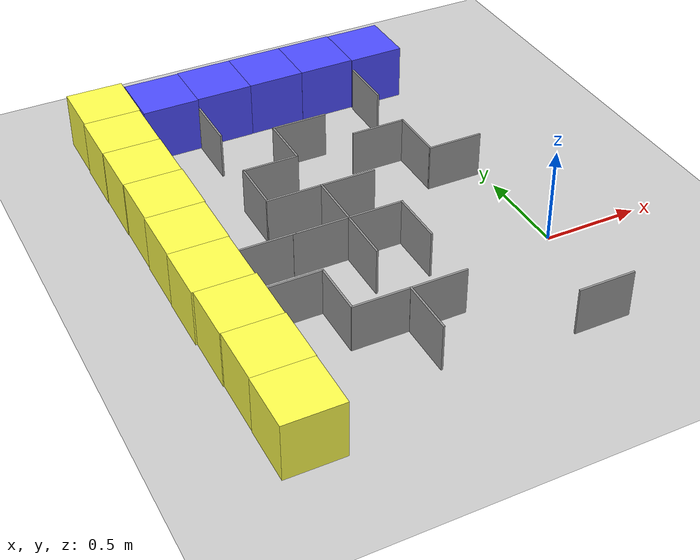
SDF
<sdf version="1.7">
 <world name="default">
  <model name="ground_plane">
   <static>1</static>
   <link name="link">
    <collision name="collision">
     <geometry><plane><normal>0 0 1</normal><size>100 100</size></plane></geometry>
     <surface><friction><ode><mu>100</mu><mu2>50</mu2></ode></friction></surface>
    </collision>
    <visual name="visual">
     <cast_shadows>0</cast_shadows>
     <geometry><plane><normal>0 0 1</normal><size>100 100</size></plane></geometry>
     <material>
      <script><uri>file://media/materials/scripts/gazebo.material</uri><name>Gazebo/Grey</name></script>
     </material>
    </visual>
   </link>
  </model>
  <model name="Box_Yellow_clone">
   <link name="link_0">
    <inertial>
     <mass>1</mass>
     <inertia>
      <ixx>0.166667</ixx>
      <ixy>0</ixy>
      <ixz>0</ixz>
      <iyy>0.166667</iyy>
      <iyz>0</iyz>
      <izz>0.166667</izz>
     </inertia>
    </inertial>
    <visual name="visual">
     <geometry><box><size>0.3 0.3 0.3</size></box></geometry>
     <material>
      <lighting>1</lighting>
      <script><uri>file://media/materials/scripts/gazebo.material</uri><name>Gazebo/Grey</name></script>
      <ambient>1 1 0.3 1</ambient>
      <diffuse>0.7 0.7 0.7 1</diffuse>
      <specular>0.01 0.01 0.01 1</specular>
      <emissive>0 0 0 1</emissive>
      <shader type="vertex"><normal_map>__default__</normal_map></shader>
     </material>
    </visual>
    <collision name="collision">
     <geometry><box><size>0.3 0.3 0.3</size></box></geometry>
     <surface>
      <friction>
       <ode><mu>1</mu><mu2>1</mu2><fdir1>0 0 0</fdir1><slip1>0</slip1><slip2>0</slip2></ode>
       <torsional>
        <coefficient>1</coefficient>
        <patch_radius>0</patch_radius>
        <surface_radius>0</surface_radius>
        <use_patch_radius>1</use_patch_radius>
        <ode><slip>0</slip></ode>
       </torsional>
      </friction>
      <bounce><restitution_coefficient>0</restitution_coefficient><threshold>1e+06</threshold></bounce>
      <contact>
       <collide_without_contact>0</collide_without_contact>
       <collide_without_contact_bitmask>1</collide_without_contact_bitmask>
       <collide_bitmask>1</collide_bitmask>
       <ode>
        <soft_cfm>0</soft_cfm>
        <soft_erp>0.2</soft_erp>
        <kp>1e+13</kp>
        <kd>1</kd>
        <max_vel>0.01</max_vel>
        <min_depth>0</min_depth>
       </ode>
       <bullet>
        <split_impulse>1</split_impulse>
        <split_impulse_penetration_threshold>-0.01</split_impulse_penetration_threshold>
        <soft_cfm>0</soft_cfm>
        <soft_erp>0.2</soft_erp>
        <kp>1e+13</kp>
        <kd>1</kd>
       </bullet>
      </contact>
     </surface>
    </collision>
   </link>
   <static>0</static>
   <pose>-1.66409 -0.700241 0.15 -0 -0 -0.003093</pose>
  </model>
  <model name="Box_Yellow_clone_0">
   <link name="link_0">
    <inertial>
     <mass>1</mass>
     <inertia>
      <ixx>0.166667</ixx>
      <ixy>0</ixy>
      <ixz>0</ixz>
      <iyy>0.166667</iyy>
      <iyz>0</iyz>
      <izz>0.166667</izz>
     </inertia>
    </inertial>
    <visual name="visual">
     <geometry><box><size>0.3 0.3 0.3</size></box></geometry>
     <material>
      <lighting>1</lighting>
      <script><uri>file://media/materials/scripts/gazebo.material</uri><name>Gazebo/Grey</name></script>
      <ambient>1 1 0.3 1</ambient>
      <diffuse>0.7 0.7 0.7 1</diffuse>
      <specular>0.01 0.01 0.01 1</specular>
      <emissive>0 0 0 1</emissive>
      <shader type="vertex"><normal_map>__default__</normal_map></shader>
     </material>
    </visual>
    <collision name="collision">
     <geometry><box><size>0.3 0.3 0.3</size></box></geometry>
     <surface>
      <friction>
       <ode><mu>1</mu><mu2>1</mu2><fdir1>0 0 0</fdir1><slip1>0</slip1><slip2>0</slip2></ode>
       <torsional>
        <coefficient>1</coefficient>
        <patch_radius>0</patch_radius>
        <surface_radius>0</surface_radius>
        <use_patch_radius>1</use_patch_radius>
        <ode><slip>0</slip></ode>
       </torsional>
      </friction>
      <bounce><restitution_coefficient>0</restitution_coefficient><threshold>1e+06</threshold></bounce>
      <contact>
       <collide_without_contact>0</collide_without_contact>
       <collide_without_contact_bitmask>1</collide_without_contact_bitmask>
       <collide_bitmask>1</collide_bitmask>
       <ode>
        <soft_cfm>0</soft_cfm>
        <soft_erp>0.2</soft_erp>
        <kp>1e+13</kp>
        <kd>1</kd>
        <max_vel>0.01</max_vel>
        <min_depth>0</min_depth>
       </ode>
       <bullet>
        <split_impulse>1</split_impulse>
        <split_impulse_penetration_threshold>-0.01</split_impulse_penetration_threshold>
        <soft_cfm>0</soft_cfm>
        <soft_erp>0.2</soft_erp>
        <kp>1e+13</kp>
        <kd>1</kd>
       </bullet>
      </contact>
     </surface>
    </collision>
   </link>
   <static>0</static>
   <pose>-1.66155 -0.400247 0.15 0 -0 -0.003093</pose>
  </model>
  <model name="Box_Yellow_clone_1">
   <link name="link_0">
    <inertial>
     <mass>1</mass>
     <inertia>
      <ixx>0.166667</ixx>
      <ixy>0</ixy>
      <ixz>0</ixz>
      <iyy>0.166667</iyy>
      <iyz>0</iyz>
      <izz>0.166667</izz>
     </inertia>
    </inertial>
    <visual name="visual">
     <geometry><box><size>0.3 0.3 0.3</size></box></geometry>
     <material>
      <lighting>1</lighting>
      <script><uri>file://media/materials/scripts/gazebo.material</uri><name>Gazebo/Grey</name></script>
      <ambient>1 1 0.3 1</ambient>
      <diffuse>0.7 0.7 0.7 1</diffuse>
      <specular>0.01 0.01 0.01 1</specular>
      <emissive>0 0 0 1</emissive>
      <shader type="vertex"><normal_map>__default__</normal_map></shader>
     </material>
    </visual>
    <collision name="collision">
     <geometry><box><size>0.3 0.3 0.3</size></box></geometry>
     <surface>
      <friction>
       <ode><mu>1</mu><mu2>1</mu2><fdir1>0 0 0</fdir1><slip1>0</slip1><slip2>0</slip2></ode>
       <torsional>
        <coefficient>1</coefficient>
        <patch_radius>0</patch_radius>
        <surface_radius>0</surface_radius>
        <use_patch_radius>1</use_patch_radius>
        <ode><slip>0</slip></ode>
       </torsional>
      </friction>
      <bounce><restitution_coefficient>0</restitution_coefficient><threshold>1e+06</threshold></bounce>
      <contact>
       <collide_without_contact>0</collide_without_contact>
       <collide_without_contact_bitmask>1</collide_without_contact_bitmask>
       <collide_bitmask>1</collide_bitmask>
       <ode>
        <soft_cfm>0</soft_cfm>
        <soft_erp>0.2</soft_erp>
        <kp>1e+13</kp>
        <kd>1</kd>
        <max_vel>0.01</max_vel>
        <min_depth>0</min_depth>
       </ode>
       <bullet>
        <split_impulse>1</split_impulse>
        <split_impulse_penetration_threshold>-0.01</split_impulse_penetration_threshold>
        <soft_cfm>0</soft_cfm>
        <soft_erp>0.2</soft_erp>
        <kp>1e+13</kp>
        <kd>1</kd>
       </bullet>
      </contact>
     </surface>
    </collision>
   </link>
   <static>0</static>
   <pose>-1.6649 -0.100231 0.15 -0 -0 -0.003101</pose>
  </model>
  <model name="Box_Yellow_clone_2">
   <link name="link_0">
    <inertial>
     <mass>1</mass>
     <inertia>
      <ixx>0.166667</ixx>
      <ixy>0</ixy>
      <ixz>0</ixz>
      <iyy>0.166667</iyy>
      <iyz>0</iyz>
      <izz>0.166667</izz>
     </inertia>
    </inertial>
    <visual name="visual">
     <geometry><box><size>0.3 0.3 0.3</size></box></geometry>
     <material>
      <lighting>1</lighting>
      <script><uri>file://media/materials/scripts/gazebo.material</uri><name>Gazebo/Grey</name></script>
      <ambient>1 1 0.3 1</ambient>
      <diffuse>0.7 0.7 0.7 1</diffuse>
      <specular>0.01 0.01 0.01 1</specular>
      <emissive>0 0 0 1</emissive>
      <shader type="vertex"><normal_map>__default__</normal_map></shader>
     </material>
    </visual>
    <collision name="collision">
     <geometry><box><size>0.3 0.3 0.3</size></box></geometry>
     <surface>
      <friction>
       <ode><mu>1</mu><mu2>1</mu2><fdir1>0 0 0</fdir1><slip1>0</slip1><slip2>0</slip2></ode>
       <torsional>
        <coefficient>1</coefficient>
        <patch_radius>0</patch_radius>
        <surface_radius>0</surface_radius>
        <use_patch_radius>1</use_patch_radius>
        <ode><slip>0</slip></ode>
       </torsional>
      </friction>
      <bounce><restitution_coefficient>0</restitution_coefficient><threshold>1e+06</threshold></bounce>
      <contact>
       <collide_without_contact>0</collide_without_contact>
       <collide_without_contact_bitmask>1</collide_without_contact_bitmask>
       <collide_bitmask>1</collide_bitmask>
       <ode>
        <soft_cfm>0</soft_cfm>
        <soft_erp>0.2</soft_erp>
        <kp>1e+13</kp>
        <kd>1</kd>
        <max_vel>0.01</max_vel>
        <min_depth>0</min_depth>
       </ode>
       <bullet>
        <split_impulse>1</split_impulse>
        <split_impulse_penetration_threshold>-0.01</split_impulse_penetration_threshold>
        <soft_cfm>0</soft_cfm>
        <soft_erp>0.2</soft_erp>
        <kp>1e+13</kp>
        <kd>1</kd>
       </bullet>
      </contact>
     </surface>
    </collision>
   </link>
   <static>0</static>
   <pose>-1.67216 0.199793 0.15 -0 -0 -0.003101</pose>
  </model>
  <model name="Box_Yellow_clone_3">
   <link name="link_0">
    <inertial>
     <mass>1</mass>
     <inertia>
      <ixx>0.166667</ixx>
      <ixy>0</ixy>
      <ixz>0</ixz>
      <iyy>0.166667</iyy>
      <iyz>0</iyz>
      <izz>0.166667</izz>
     </inertia>
    </inertial>
    <visual name="visual">
     <geometry><box><size>0.3 0.3 0.3</size></box></geometry>
     <material>
      <lighting>1</lighting>
      <script><uri>file://media/materials/scripts/gazebo.material</uri><name>Gazebo/Grey</name></script>
      <ambient>1 1 0.3 1</ambient>
      <diffuse>0.7 0.7 0.7 1</diffuse>
      <specular>0.01 0.01 0.01 1</specular>
      <emissive>0 0 0 1</emissive>
      <shader type="vertex"><normal_map>__default__</normal_map></shader>
     </material>
    </visual>
    <collision name="collision">
     <geometry><box><size>0.3 0.3 0.3</size></box></geometry>
     <surface>
      <friction>
       <ode><mu>1</mu><mu2>1</mu2><fdir1>0 0 0</fdir1><slip1>0</slip1><slip2>0</slip2></ode>
       <torsional>
        <coefficient>1</coefficient>
        <patch_radius>0</patch_radius>
        <surface_radius>0</surface_radius>
        <use_patch_radius>1</use_patch_radius>
        <ode><slip>0</slip></ode>
       </torsional>
      </friction>
      <bounce><restitution_coefficient>0</restitution_coefficient><threshold>1e+06</threshold></bounce>
      <contact>
       <collide_without_contact>0</collide_without_contact>
       <collide_without_contact_bitmask>1</collide_without_contact_bitmask>
       <collide_bitmask>1</collide_bitmask>
       <ode>
        <soft_cfm>0</soft_cfm>
        <soft_erp>0.2</soft_erp>
        <kp>1e+13</kp>
        <kd>1</kd>
        <max_vel>0.01</max_vel>
        <min_depth>0</min_depth>
       </ode>
       <bullet>
        <split_impulse>1</split_impulse>
        <split_impulse_penetration_threshold>-0.01</split_impulse_penetration_threshold>
        <soft_cfm>0</soft_cfm>
        <soft_erp>0.2</soft_erp>
        <kp>1e+13</kp>
        <kd>1</kd>
       </bullet>
      </contact>
     </surface>
    </collision>
   </link>
   <static>0</static>
   <pose>-1.66914 0.499818 0.15 0 -0 -0.003312</pose>
  </model>
  <model name="Box_Yellow_clone_4">
   <link name="link_0">
    <inertial>
     <mass>1</mass>
     <inertia>
      <ixx>0.166667</ixx>
      <ixy>0</ixy>
      <ixz>0</ixz>
      <iyy>0.166667</iyy>
      <iyz>0</iyz>
      <izz>0.166667</izz>
     </inertia>
    </inertial>
    <visual name="visual">
     <geometry><box><size>0.3 0.3 0.3</size></box></geometry>
     <material>
      <lighting>1</lighting>
      <script><uri>file://media/materials/scripts/gazebo.material</uri><name>Gazebo/Grey</name></script>
      <ambient>1 1 0.3 1</ambient>
      <diffuse>0.7 0.7 0.7 1</diffuse>
      <specular>0.01 0.01 0.01 1</specular>
      <emissive>0 0 0 1</emissive>
      <shader type="vertex"><normal_map>__default__</normal_map></shader>
     </material>
    </visual>
    <collision name="collision">
     <geometry><box><size>0.3 0.3 0.3</size></box></geometry>
     <surface>
      <friction>
       <ode><mu>1</mu><mu2>1</mu2><fdir1>0 0 0</fdir1><slip1>0</slip1><slip2>0</slip2></ode>
       <torsional>
        <coefficient>1</coefficient>
        <patch_radius>0</patch_radius>
        <surface_radius>0</surface_radius>
        <use_patch_radius>1</use_patch_radius>
        <ode><slip>0</slip></ode>
       </torsional>
      </friction>
      <bounce><restitution_coefficient>0</restitution_coefficient><threshold>1e+06</threshold></bounce>
      <contact>
       <collide_without_contact>0</collide_without_contact>
       <collide_without_contact_bitmask>1</collide_without_contact_bitmask>
       <collide_bitmask>1</collide_bitmask>
       <ode>
        <soft_cfm>0</soft_cfm>
        <soft_erp>0.2</soft_erp>
        <kp>1e+13</kp>
        <kd>1</kd>
        <max_vel>0.01</max_vel>
        <min_depth>0</min_depth>
       </ode>
       <bullet>
        <split_impulse>1</split_impulse>
        <split_impulse_penetration_threshold>-0.01</split_impulse_penetration_threshold>
        <soft_cfm>0</soft_cfm>
        <soft_erp>0.2</soft_erp>
        <kp>1e+13</kp>
        <kd>1</kd>
       </bullet>
      </contact>
     </surface>
    </collision>
   </link>
   <static>0</static>
   <pose>-1.66503 0.799831 0.149998 -5e-06 -7e-06 -0.003447</pose>
  </model>
  <model name="Box_Yellow_clone_5">
   <link name="link_0">
    <inertial>
     <mass>1</mass>
     <inertia>
      <ixx>0.166667</ixx>
      <ixy>0</ixy>
      <ixz>0</ixz>
      <iyy>0.166667</iyy>
      <iyz>0</iyz>
      <izz>0.166667</izz>
     </inertia>
    </inertial>
    <visual name="visual">
     <geometry><box><size>0.3 0.3 0.3</size></box></geometry>
     <material>
      <lighting>1</lighting>
      <script><uri>file://media/materials/scripts/gazebo.material</uri><name>Gazebo/Grey</name></script>
      <ambient>1 1 0.3 1</ambient>
      <diffuse>0.7 0.7 0.7 1</diffuse>
      <specular>0.01 0.01 0.01 1</specular>
      <emissive>0 0 0 1</emissive>
      <shader type="vertex"><normal_map>__default__</normal_map></shader>
     </material>
    </visual>
    <collision name="collision">
     <geometry><box><size>0.3 0.3 0.3</size></box></geometry>
     <surface>
      <friction>
       <ode><mu>1</mu><mu2>1</mu2><fdir1>0 0 0</fdir1><slip1>0</slip1><slip2>0</slip2></ode>
       <torsional>
        <coefficient>1</coefficient>
        <patch_radius>0</patch_radius>
        <surface_radius>0</surface_radius>
        <use_patch_radius>1</use_patch_radius>
        <ode><slip>0</slip></ode>
       </torsional>
      </friction>
      <bounce><restitution_coefficient>0</restitution_coefficient><threshold>1e+06</threshold></bounce>
      <contact>
       <collide_without_contact>0</collide_without_contact>
       <collide_without_contact_bitmask>1</collide_without_contact_bitmask>
       <collide_bitmask>1</collide_bitmask>
       <ode>
        <soft_cfm>0</soft_cfm>
        <soft_erp>0.2</soft_erp>
        <kp>1e+13</kp>
        <kd>1</kd>
        <max_vel>0.01</max_vel>
        <min_depth>0</min_depth>
       </ode>
       <bullet>
        <split_impulse>1</split_impulse>
        <split_impulse_penetration_threshold>-0.01</split_impulse_penetration_threshold>
        <soft_cfm>0</soft_cfm>
        <soft_erp>0.2</soft_erp>
        <kp>1e+13</kp>
        <kd>1</kd>
       </bullet>
      </contact>
     </surface>
    </collision>
   </link>
   <static>0</static>
   <pose>-1.6671 1.09986 0.15 0 -0 -0.003564</pose>
  </model>
  <model name="Box_Yellow_clone_6">
   <link name="link_0">
    <inertial>
     <mass>1</mass>
     <inertia>
      <ixx>0.166667</ixx>
      <ixy>0</ixy>
      <ixz>0</ixz>
      <iyy>0.166667</iyy>
      <iyz>0</iyz>
      <izz>0.166667</izz>
     </inertia>
    </inertial>
    <visual name="visual">
     <geometry><box><size>0.3 0.3 0.3</size></box></geometry>
     <material>
      <lighting>1</lighting>
      <script><uri>file://media/materials/scripts/gazebo.material</uri><name>Gazebo/Grey</name></script>
      <ambient>1 1 0.3 1</ambient>
      <diffuse>0.7 0.7 0.7 1</diffuse>
      <specular>0.01 0.01 0.01 1</specular>
      <emissive>0 0 0 1</emissive>
      <shader type="vertex"><normal_map>__default__</normal_map></shader>
     </material>
    </visual>
    <collision name="collision">
     <geometry><box><size>0.3 0.3 0.3</size></box></geometry>
     <surface>
      <friction>
       <ode><mu>1</mu><mu2>1</mu2><fdir1>0 0 0</fdir1><slip1>0</slip1><slip2>0</slip2></ode>
       <torsional>
        <coefficient>1</coefficient>
        <patch_radius>0</patch_radius>
        <surface_radius>0</surface_radius>
        <use_patch_radius>1</use_patch_radius>
        <ode><slip>0</slip></ode>
       </torsional>
      </friction>
      <bounce><restitution_coefficient>0</restitution_coefficient><threshold>1e+06</threshold></bounce>
      <contact>
       <collide_without_contact>0</collide_without_contact>
       <collide_without_contact_bitmask>1</collide_without_contact_bitmask>
       <collide_bitmask>1</collide_bitmask>
       <ode>
        <soft_cfm>0</soft_cfm>
        <soft_erp>0.2</soft_erp>
        <kp>1e+13</kp>
        <kd>1</kd>
        <max_vel>0.01</max_vel>
        <min_depth>0</min_depth>
       </ode>
       <bullet>
        <split_impulse>1</split_impulse>
        <split_impulse_penetration_threshold>-0.01</split_impulse_penetration_threshold>
        <soft_cfm>0</soft_cfm>
        <soft_erp>0.2</soft_erp>
        <kp>1e+13</kp>
        <kd>1</kd>
       </bullet>
      </contact>
     </surface>
    </collision>
   </link>
   <static>0</static>
   <pose>-1.66797 1.39989 0.15 -0 -0 -0.003556</pose>
  </model>
  <model name="Box_Yellow_clone_7">
   <link name="link_0">
    <inertial>
     <mass>1</mass>
     <inertia>
      <ixx>0.166667</ixx>
      <ixy>0</ixy>
      <ixz>0</ixz>
      <iyy>0.166667</iyy>
      <iyz>0</iyz>
      <izz>0.166667</izz>
     </inertia>
    </inertial>
    <visual name="visual">
     <geometry><box><size>0.3 0.3 0.3</size></box></geometry>
     <material>
      <lighting>1</lighting>
      <script><uri>file://media/materials/scripts/gazebo.material</uri><name>Gazebo/Grey</name></script>
      <ambient>1 1 0.3 1</ambient>
      <diffuse>0.7 0.7 0.7 1</diffuse>
      <specular>0.01 0.01 0.01 1</specular>
      <emissive>0 0 0 1</emissive>
      <shader type="vertex"><normal_map>__default__</normal_map></shader>
     </material>
    </visual>
    <collision name="collision">
     <geometry><box><size>0.3 0.3 0.3</size></box></geometry>
     <surface>
      <friction>
       <ode><mu>1</mu><mu2>1</mu2><fdir1>0 0 0</fdir1><slip1>0</slip1><slip2>0</slip2></ode>
       <torsional>
        <coefficient>1</coefficient>
        <patch_radius>0</patch_radius>
        <surface_radius>0</surface_radius>
        <use_patch_radius>1</use_patch_radius>
        <ode><slip>0</slip></ode>
       </torsional>
      </friction>
      <bounce><restitution_coefficient>0</restitution_coefficient><threshold>1e+06</threshold></bounce>
      <contact>
       <collide_without_contact>0</collide_without_contact>
       <collide_without_contact_bitmask>1</collide_without_contact_bitmask>
       <collide_bitmask>1</collide_bitmask>
       <ode>
        <soft_cfm>0</soft_cfm>
        <soft_erp>0.2</soft_erp>
        <kp>1e+13</kp>
        <kd>1</kd>
        <max_vel>0.01</max_vel>
        <min_depth>0</min_depth>
       </ode>
       <bullet>
        <split_impulse>1</split_impulse>
        <split_impulse_penetration_threshold>-0.01</split_impulse_penetration_threshold>
        <soft_cfm>0</soft_cfm>
        <soft_erp>0.2</soft_erp>
        <kp>1e+13</kp>
        <kd>1</kd>
       </bullet>
      </contact>
     </surface>
    </collision>
   </link>
   <static>0</static>
   <pose>-1.66352 1.6999 0.15 0 0 -0.003578</pose>
  </model>
  <model name="Box_Blue_clone_3">
   <link name="link_0">
    <inertial>
     <mass>1</mass>
     <inertia>
      <ixx>0.166667</ixx>
      <ixy>0</ixy>
      <ixz>0</ixz>
      <iyy>0.166667</iyy>
      <iyz>0</iyz>
      <izz>0.166667</izz>
     </inertia>
    </inertial>
    <visual name="visual">
     <geometry><box><size>0.3 0.3 0.3</size></box></geometry>
     <material>
      <lighting>1</lighting>
      <script><uri>file://media/materials/scripts/gazebo.material</uri><name>Gazebo/Grey</name></script>
      <ambient>0.3 0.3 1 1</ambient>
      <diffuse>0.7 0.7 0.7 1</diffuse>
      <specular>0.01 0.01 0.01 1</specular>
      <emissive>0 0 0 1</emissive>
      <shader type="vertex"><normal_map>__default__</normal_map></shader>
     </material>
    </visual>
    <collision name="collision">
     <geometry><box><size>0.3 0.3 0.3</size></box></geometry>
     <surface>
      <friction>
       <ode><mu>1</mu><mu2>1</mu2><fdir1>0 0 0</fdir1><slip1>0</slip1><slip2>0</slip2></ode>
       <torsional>
        <coefficient>1</coefficient>
        <patch_radius>0</patch_radius>
        <surface_radius>0</surface_radius>
        <use_patch_radius>1</use_patch_radius>
        <ode><slip>0</slip></ode>
       </torsional>
      </friction>
      <bounce><restitution_coefficient>0</restitution_coefficient><threshold>1e+06</threshold></bounce>
      <contact>
       <collide_without_contact>0</collide_without_contact>
       <collide_without_contact_bitmask>1</collide_without_contact_bitmask>
       <collide_bitmask>1</collide_bitmask>
       <ode>
        <soft_cfm>0</soft_cfm>
        <soft_erp>0.2</soft_erp>
        <kp>1e+13</kp>
        <kd>1</kd>
        <max_vel>0.01</max_vel>
        <min_depth>0</min_depth>
       </ode>
       <bullet>
        <split_impulse>1</split_impulse>
        <split_impulse_penetration_threshold>-0.01</split_impulse_penetration_threshold>
        <soft_cfm>0</soft_cfm>
        <soft_erp>0.2</soft_erp>
        <kp>1e+13</kp>
        <kd>1</kd>
       </bullet>
      </contact>
     </surface>
    </collision>
   </link>
   <static>0</static>
   <pose>-0.159685 1.65795 0.15 0 -0 0.001821</pose>
  </model>
  <model name="Box_Blue_clone_4">
   <link name="link_0">
    <inertial>
     <mass>1</mass>
     <inertia>
      <ixx>0.166667</ixx>
      <ixy>0</ixy>
      <ixz>0</ixz>
      <iyy>0.166667</iyy>
      <iyz>0</iyz>
      <izz>0.166667</izz>
     </inertia>
    </inertial>
    <visual name="visual">
     <geometry><box><size>0.3 0.3 0.3</size></box></geometry>
     <material>
      <lighting>1</lighting>
      <script><uri>file://media/materials/scripts/gazebo.material</uri><name>Gazebo/Grey</name></script>
      <ambient>0.3 0.3 1 1</ambient>
      <diffuse>0.7 0.7 0.7 1</diffuse>
      <specular>0.01 0.01 0.01 1</specular>
      <emissive>0 0 0 1</emissive>
      <shader type="vertex"><normal_map>__default__</normal_map></shader>
     </material>
    </visual>
    <collision name="collision">
     <geometry><box><size>0.3 0.3 0.3</size></box></geometry>
     <surface>
      <friction>
       <ode><mu>1</mu><mu2>1</mu2><fdir1>0 0 0</fdir1><slip1>0</slip1><slip2>0</slip2></ode>
       <torsional>
        <coefficient>1</coefficient>
        <patch_radius>0</patch_radius>
        <surface_radius>0</surface_radius>
        <use_patch_radius>1</use_patch_radius>
        <ode><slip>0</slip></ode>
       </torsional>
      </friction>
      <bounce><restitution_coefficient>0</restitution_coefficient><threshold>1e+06</threshold></bounce>
      <contact>
       <collide_without_contact>0</collide_without_contact>
       <collide_without_contact_bitmask>1</collide_without_contact_bitmask>
       <collide_bitmask>1</collide_bitmask>
       <ode>
        <soft_cfm>0</soft_cfm>
        <soft_erp>0.2</soft_erp>
        <kp>1e+13</kp>
        <kd>1</kd>
        <max_vel>0.01</max_vel>
        <min_depth>0</min_depth>
       </ode>
       <bullet>
        <split_impulse>1</split_impulse>
        <split_impulse_penetration_threshold>-0.01</split_impulse_penetration_threshold>
        <soft_cfm>0</soft_cfm>
        <soft_erp>0.2</soft_erp>
        <kp>1e+13</kp>
        <kd>1</kd>
       </bullet>
      </contact>
     </surface>
    </collision>
   </link>
   <static>0</static>
   <pose>-0.459734 1.6624 0.15 0 -0 0.001553</pose>
  </model>
  <model name="Box_Blue_clone_5">
   <link name="link_0">
    <inertial>
     <mass>1</mass>
     <inertia>
      <ixx>0.166667</ixx>
      <ixy>0</ixy>
      <ixz>0</ixz>
      <iyy>0.166667</iyy>
      <iyz>0</iyz>
      <izz>0.166667</izz>
     </inertia>
    </inertial>
    <visual name="visual">
     <geometry><box><size>0.3 0.3 0.3</size></box></geometry>
     <material>
      <lighting>1</lighting>
      <script><uri>file://media/materials/scripts/gazebo.material</uri><name>Gazebo/Grey</name></script>
      <ambient>0.3 0.3 1 1</ambient>
      <diffuse>0.7 0.7 0.7 1</diffuse>
      <specular>0.01 0.01 0.01 1</specular>
      <emissive>0 0 0 1</emissive>
      <shader type="vertex"><normal_map>__default__</normal_map></shader>
     </material>
    </visual>
    <collision name="collision">
     <geometry><box><size>0.3 0.3 0.3</size></box></geometry>
     <surface>
      <friction>
       <ode><mu>1</mu><mu2>1</mu2><fdir1>0 0 0</fdir1><slip1>0</slip1><slip2>0</slip2></ode>
       <torsional>
        <coefficient>1</coefficient>
        <patch_radius>0</patch_radius>
        <surface_radius>0</surface_radius>
        <use_patch_radius>1</use_patch_radius>
        <ode><slip>0</slip></ode>
       </torsional>
      </friction>
      <bounce><restitution_coefficient>0</restitution_coefficient><threshold>1e+06</threshold></bounce>
      <contact>
       <collide_without_contact>0</collide_without_contact>
       <collide_without_contact_bitmask>1</collide_without_contact_bitmask>
       <collide_bitmask>1</collide_bitmask>
       <ode>
        <soft_cfm>0</soft_cfm>
        <soft_erp>0.2</soft_erp>
        <kp>1e+13</kp>
        <kd>1</kd>
        <max_vel>0.01</max_vel>
        <min_depth>0</min_depth>
       </ode>
       <bullet>
        <split_impulse>1</split_impulse>
        <split_impulse_penetration_threshold>-0.01</split_impulse_penetration_threshold>
        <soft_cfm>0</soft_cfm>
        <soft_erp>0.2</soft_erp>
        <kp>1e+13</kp>
        <kd>1</kd>
       </bullet>
      </contact>
     </surface>
    </collision>
   </link>
   <static>0</static>
   <pose>-0.759764 1.66238 0.15 0 -0 0.001446</pose>
  </model>
  <model name="Box_Blue_clone_6">
   <link name="link_0">
    <inertial>
     <mass>1</mass>
     <inertia>
      <ixx>0.166667</ixx>
      <ixy>0</ixy>
      <ixz>0</ixz>
      <iyy>0.166667</iyy>
      <iyz>0</iyz>
      <izz>0.166667</izz>
     </inertia>
    </inertial>
    <visual name="visual">
     <geometry><box><size>0.3 0.3 0.3</size></box></geometry>
     <material>
      <lighting>1</lighting>
      <script><uri>file://media/materials/scripts/gazebo.material</uri><name>Gazebo/Grey</name></script>
      <ambient>0.3 0.3 1 1</ambient>
      <diffuse>0.7 0.7 0.7 1</diffuse>
      <specular>0.01 0.01 0.01 1</specular>
      <emissive>0 0 0 1</emissive>
      <shader type="vertex"><normal_map>__default__</normal_map></shader>
     </material>
    </visual>
    <collision name="collision">
     <geometry><box><size>0.3 0.3 0.3</size></box></geometry>
     <surface>
      <friction>
       <ode><mu>1</mu><mu2>1</mu2><fdir1>0 0 0</fdir1><slip1>0</slip1><slip2>0</slip2></ode>
       <torsional>
        <coefficient>1</coefficient>
        <patch_radius>0</patch_radius>
        <surface_radius>0</surface_radius>
        <use_patch_radius>1</use_patch_radius>
        <ode><slip>0</slip></ode>
       </torsional>
      </friction>
      <bounce><restitution_coefficient>0</restitution_coefficient><threshold>1e+06</threshold></bounce>
      <contact>
       <collide_without_contact>0</collide_without_contact>
       <collide_without_contact_bitmask>1</collide_without_contact_bitmask>
       <collide_bitmask>1</collide_bitmask>
       <ode>
        <soft_cfm>0</soft_cfm>
        <soft_erp>0.2</soft_erp>
        <kp>1e+13</kp>
        <kd>1</kd>
        <max_vel>0.01</max_vel>
        <min_depth>0</min_depth>
       </ode>
       <bullet>
        <split_impulse>1</split_impulse>
        <split_impulse_penetration_threshold>-0.01</split_impulse_penetration_threshold>
        <soft_cfm>0</soft_cfm>
        <soft_erp>0.2</soft_erp>
        <kp>1e+13</kp>
        <kd>1</kd>
       </bullet>
      </contact>
     </surface>
    </collision>
   </link>
   <static>0</static>
   <pose>-1.05978 1.66049 0.15 0 -0 0.001403</pose>
  </model>
  <model name="Box_Blue_clone_7">
   <link name="link_0">
    <inertial>
     <mass>1</mass>
     <inertia>
      <ixx>0.166667</ixx>
      <ixy>0</ixy>
      <ixz>0</ixz>
      <iyy>0.166667</iyy>
      <iyz>0</iyz>
      <izz>0.166667</izz>
     </inertia>
    </inertial>
    <visual name="visual">
     <geometry><box><size>0.3 0.3 0.3</size></box></geometry>
     <material>
      <lighting>1</lighting>
      <script><uri>file://media/materials/scripts/gazebo.material</uri><name>Gazebo/Grey</name></script>
      <ambient>0.3 0.3 1 1</ambient>
      <diffuse>0.7 0.7 0.7 1</diffuse>
      <specular>0.01 0.01 0.01 1</specular>
      <emissive>0 0 0 1</emissive>
      <shader type="vertex"><normal_map>__default__</normal_map></shader>
     </material>
    </visual>
    <collision name="collision">
     <geometry><box><size>0.3 0.3 0.3</size></box></geometry>
     <surface>
      <friction>
       <ode><mu>1</mu><mu2>1</mu2><fdir1>0 0 0</fdir1><slip1>0</slip1><slip2>0</slip2></ode>
       <torsional>
        <coefficient>1</coefficient>
        <patch_radius>0</patch_radius>
        <surface_radius>0</surface_radius>
        <use_patch_radius>1</use_patch_radius>
        <ode><slip>0</slip></ode>
       </torsional>
      </friction>
      <bounce><restitution_coefficient>0</restitution_coefficient><threshold>1e+06</threshold></bounce>
      <contact>
       <collide_without_contact>0</collide_without_contact>
       <collide_without_contact_bitmask>1</collide_without_contact_bitmask>
       <collide_bitmask>1</collide_bitmask>
       <ode>
        <soft_cfm>0</soft_cfm>
        <soft_erp>0.2</soft_erp>
        <kp>1e+13</kp>
        <kd>1</kd>
        <max_vel>0.01</max_vel>
        <min_depth>0</min_depth>
       </ode>
       <bullet>
        <split_impulse>1</split_impulse>
        <split_impulse_penetration_threshold>-0.01</split_impulse_penetration_threshold>
        <soft_cfm>0</soft_cfm>
        <soft_erp>0.2</soft_erp>
        <kp>1e+13</kp>
        <kd>1</kd>
       </bullet>
      </contact>
     </surface>
    </collision>
   </link>
   <static>0</static>
   <pose>-1.3598 1.65522 0.15 0 -0 0.001322</pose>
  </model>
  <model name="Maze_I_V">
   <pose>-1.35964 0.293545 0 0 -0 0</pose>
   <link name="Wall_0">
    <collision name="Wall_0_Collision">
     <geometry><box><size>0.294 0.01 0.25</size></box></geometry>
     <pose>0 0 0.125 0 -0 0</pose>
    </collision>
    <visual name="Wall_0_Visual">
     <pose>0 0 0.125 0 -0 0</pose>
     <geometry><box><size>0.294 0.01 0.25</size></box></geometry>
     <material>
      <script><uri>file://media/materials/scripts/gazebo.material</uri><name>Gazebo/Grey</name></script>
      <ambient>1 1 1 1</ambient>
     </material>
     <meta><layer>0</layer></meta>
    </visual>
   </link>
   <static>1</static>
  </model>
  <model name="Maze_L_LB">
   <pose>-0.798102 0.44384 0 0 -0 0</pose>
   <link name="Wall_0">
    <collision name="Wall_0_Collision">
     <geometry><box><size>0.294 0.01 0.25</size></box></geometry>
     <pose>0 0 0.125 0 -0 0</pose>
    </collision>
    <visual name="Wall_0_Visual">
     <pose>0 0 0.125 0 -0 0</pose>
     <geometry><box><size>0.294 0.01 0.25</size></box></geometry>
     <material>
      <script><uri>file://media/materials/scripts/gazebo.material</uri><name>Gazebo/Grey</name></script>
      <ambient>1 1 1 1</ambient>
     </material>
     <meta><layer>0</layer></meta>
    </visual>
    <pose>0 0.142 0 0 -0 0</pose>
   </link>
   <link name="Wall_2">
    <collision name="Wall_2_Collision">
     <geometry><box><size>0.294 0.01 0.25</size></box></geometry>
     <pose>0 0 0.125 0 -0 0</pose>
    </collision>
    <visual name="Wall_2_Visual">
     <pose>0 0 0.125 0 -0 0</pose>
     <geometry><box><size>0.294 0.01 0.25</size></box></geometry>
     <material>
      <script><uri>file://media/materials/scripts/gazebo.material</uri><name>Gazebo/Grey</name></script>
      <ambient>1 1 1 1</ambient>
     </material>
     <meta><layer>0</layer></meta>
    </visual>
    <pose>-0.142 0 0 0 0 -1.5708</pose>
   </link>
   <static>1</static>
  </model>
  <model name="Maze_L_LU">
   <pose>-1.36321 -0.14843 0 0 -0 0</pose>
   <link name="Wall_0">
    <collision name="Wall_0_Collision">
     <geometry><box><size>0.294 0.01 0.25</size></box></geometry>
     <pose>0 0 0.125 0 -0 0</pose>
    </collision>
    <visual name="Wall_0_Visual">
     <pose>0 0 0.125 0 -0 0</pose>
     <geometry><box><size>0.294 0.01 0.25</size></box></geometry>
     <material>
      <script><uri>file://media/materials/scripts/gazebo.material</uri><name>Gazebo/Grey</name></script>
      <ambient>1 1 1 1</ambient>
     </material>
     <meta><layer>0</layer></meta>
    </visual>
    <pose>0 0.142 0 0 -0 3.14159</pose>
   </link>
   <link name="Wall_2">
    <collision name="Wall_2_Collision">
     <geometry><box><size>0.294 0.01 0.25</size></box></geometry>
     <pose>0 0 0.125 0 -0 0</pose>
    </collision>
    <visual name="Wall_2_Visual">
     <pose>0 0 0.125 0 -0 0</pose>
     <geometry><box><size>0.294 0.01 0.25</size></box></geometry>
     <material>
      <script><uri>file://media/materials/scripts/gazebo.material</uri><name>Gazebo/Grey</name></script>
      <ambient>1 1 1 1</ambient>
     </material>
     <meta><layer>0</layer></meta>
    </visual>
    <pose>0.142 0 0 0 0 -1.5708</pose>
   </link>
   <static>1</static>
  </model>
  <model name="Maze_L_RB">
   <pose>-1.08633 0.727561 0 0 -0 0</pose>
   <link name="Wall_0">
    <collision name="Wall_0_Collision">
     <geometry><box><size>0.294 0.01 0.25</size></box></geometry>
     <pose>0 0 0.125 0 -0 0</pose>
    </collision>
    <visual name="Wall_0_Visual">
     <pose>0 0 0.125 0 -0 0</pose>
     <geometry><box><size>0.294 0.01 0.25</size></box></geometry>
     <material>
      <script><uri>file://media/materials/scripts/gazebo.material</uri><name>Gazebo/Grey</name></script>
      <ambient>1 1 1 1</ambient>
     </material>
     <meta><layer>0</layer></meta>
    </visual>
    <pose>0 -0.142 0 0 -0 0</pose>
   </link>
   <link name="Wall_2">
    <collision name="Wall_2_Collision">
     <geometry><box><size>0.294 0.01 0.25</size></box></geometry>
     <pose>0 0 0.125 0 -0 0</pose>
    </collision>
    <visual name="Wall_2_Visual">
     <pose>0 0 0.125 0 -0 0</pose>
     <geometry><box><size>0.294 0.01 0.25</size></box></geometry>
     <material>
      <script><uri>file://media/materials/scripts/gazebo.material</uri><name>Gazebo/Grey</name></script>
      <ambient>1 1 1 1</ambient>
     </material>
     <meta><layer>0</layer></meta>
    </visual>
    <pose>-0.142 0 0 0 -0 1.5708</pose>
   </link>
   <static>1</static>
  </model>
  <model name="Maze_I_H_clone_5">
   <pose>-0.308653 1.3447 0 0 -0 0</pose>
   <link name="Wall_0">
    <collision name="Wall_0_Collision">
     <geometry><box><size>0.294 0.01 0.25</size></box></geometry>
     <pose>0 0 0.125 0 -0 0</pose>
    </collision>
    <visual name="Wall_0_Visual">
     <pose>0 0 0.125 0 -0 0</pose>
     <geometry><box><size>0.294 0.01 0.25</size></box></geometry>
     <material>
      <script><uri>file://media/materials/scripts/gazebo.material</uri><name>Gazebo/Grey</name></script>
      <ambient>1 1 1 1</ambient>
     </material>
     <meta><layer>0</layer></meta>
    </visual>
    <pose>0 0 0 0 -0 1.5708</pose>
   </link>
   <static>1</static>
  </model>
  <model name="Maze_I_H_clone_6">
   <pose>-1.20777 1.35352 0 0 -0 0</pose>
   <link name="Wall_0">
    <collision name="Wall_0_Collision">
     <geometry><box><size>0.294 0.01 0.25</size></box></geometry>
     <pose>0 0 0.125 0 -0 0</pose>
    </collision>
    <visual name="Wall_0_Visual">
     <pose>0 0 0.125 0 -0 0</pose>
     <geometry><box><size>0.294 0.01 0.25</size></box></geometry>
     <material>
      <script><uri>file://media/materials/scripts/gazebo.material</uri><name>Gazebo/Grey</name></script>
      <ambient>1 1 1 1</ambient>
     </material>
     <meta><layer>0</layer></meta>
    </visual>
    <pose>0 0 0 0 -0 1.5708</pose>
   </link>
   <static>1</static>
  </model>
  <model name="Maze_I_V_clone_1">
   <pose>-0.135618 -0.641445 0 0 -0 0</pose>
   <link name="Wall_0">
    <collision name="Wall_0_Collision">
     <geometry><box><size>0.294 0.01 0.25</size></box></geometry>
     <pose>0 0 0.125 0 -0 0</pose>
    </collision>
    <visual name="Wall_0_Visual">
     <pose>0 0 0.125 0 -0 0</pose>
     <geometry><box><size>0.294 0.01 0.25</size></box></geometry>
     <material>
      <script><uri>file://media/materials/scripts/gazebo.material</uri><name>Gazebo/Grey</name></script>
      <ambient>1 1 1 1</ambient>
     </material>
     <meta><layer>0</layer></meta>
    </visual>
   </link>
   <static>1</static>
  </model>
  <model name="Maze_L_LU_clone_1">
   <pose>-0.452385 0.781514 0 0 -0 0</pose>
   <link name="Wall_0">
    <collision name="Wall_0_Collision">
     <geometry><box><size>0.294 0.01 0.25</size></box></geometry>
     <pose>0 0 0.125 0 -0 0</pose>
    </collision>
    <visual name="Wall_0_Visual">
     <pose>0 0 0.125 0 -0 0</pose>
     <geometry><box><size>0.294 0.01 0.25</size></box></geometry>
     <material>
      <script><uri>file://media/materials/scripts/gazebo.material</uri><name>Gazebo/Grey</name></script>
      <ambient>1 1 1 1</ambient>
     </material>
     <meta><layer>0</layer></meta>
    </visual>
    <pose>0 0.142 0 0 -0 3.14159</pose>
   </link>
   <link name="Wall_2">
    <collision name="Wall_2_Collision">
     <geometry><box><size>0.294 0.01 0.25</size></box></geometry>
     <pose>0 0 0.125 0 -0 0</pose>
    </collision>
    <visual name="Wall_2_Visual">
     <pose>0 0 0.125 0 -0 0</pose>
     <geometry><box><size>0.294 0.01 0.25</size></box></geometry>
     <material>
      <script><uri>file://media/materials/scripts/gazebo.material</uri><name>Gazebo/Grey</name></script>
      <ambient>1 1 1 1</ambient>
     </material>
     <meta><layer>0</layer></meta>
    </visual>
    <pose>0.142 0 0 0 0 -1.5708</pose>
   </link>
   <static>1</static>
  </model>
  <model name="Maze_I_V_clone_2">
   <pose>-0.16756 0.630564 0 0 -0 0</pose>
   <link name="Wall_0">
    <collision name="Wall_0_Collision">
     <geometry><box><size>0.294 0.01 0.25</size></box></geometry>
     <pose>0 0 0.125 0 -0 0</pose>
    </collision>
    <visual name="Wall_0_Visual">
     <pose>0 0 0.125 0 -0 0</pose>
     <geometry><box><size>0.294 0.01 0.25</size></box></geometry>
     <material>
      <script><uri>file://media/materials/scripts/gazebo.material</uri><name>Gazebo/Grey</name></script>
      <ambient>1 1 1 1</ambient>
     </material>
     <meta><layer>0</layer></meta>
    </visual>
   </link>
   <static>1</static>
  </model>
  <model name="Maze_L_LB_clone_5_clone">
   <pose>-0.788521 -0.434448 0 0 -0 0</pose>
   <link name="Wall_0">
    <collision name="Wall_0_Collision">
     <geometry><box><size>0.294 0.01 0.25</size></box></geometry>
     <pose>0 0 0.125 0 -0 0</pose>
    </collision>
    <visual name="Wall_0_Visual">
     <pose>0 0 0.125 0 -0 0</pose>
     <geometry><box><size>0.294 0.01 0.25</size></box></geometry>
     <material>
      <script><uri>file://media/materials/scripts/gazebo.material</uri><name>Gazebo/Grey</name></script>
      <ambient>1 1 1 1</ambient>
     </material>
     <meta><layer>0</layer></meta>
    </visual>
    <pose>0 0.142 0 0 -0 0</pose>
   </link>
   <link name="Wall_2">
    <collision name="Wall_2_Collision">
     <geometry><box><size>0.294 0.01 0.25</size></box></geometry>
     <pose>0 0 0.125 0 -0 0</pose>
    </collision>
    <visual name="Wall_2_Visual">
     <pose>0 0 0.125 0 -0 0</pose>
     <geometry><box><size>0.294 0.01 0.25</size></box></geometry>
     <material>
      <script><uri>file://media/materials/scripts/gazebo.material</uri><name>Gazebo/Grey</name></script>
      <ambient>1 1 1 1</ambient>
     </material>
     <meta><layer>0</layer></meta>
    </visual>
    <pose>-0.142 0 0 0 0 -1.5708</pose>
   </link>
   <static>1</static>
  </model>
  <model name="Maze_I_V_clone_4">
   <pose>-1.07712 -0.291215 0 0 -0 0</pose>
   <link name="Wall_0">
    <collision name="Wall_0_Collision">
     <geometry><box><size>0.294 0.01 0.25</size></box></geometry>
     <pose>0 0 0.125 0 -0 0</pose>
    </collision>
    <visual name="Wall_0_Visual">
     <pose>0 0 0.125 0 -0 0</pose>
     <geometry><box><size>0.294 0.01 0.25</size></box></geometry>
     <material>
      <script><uri>file://media/materials/scripts/gazebo.material</uri><name>Gazebo/Grey</name></script>
      <ambient>1 1 1 1</ambient>
     </material>
     <meta><layer>0</layer></meta>
    </visual>
   </link>
   <static>1</static>
  </model>
  <model name="Maze_L_LU_clone_2">
   <pose>-1.08312 0.150919 0 0 -0 0</pose>
   <link name="Wall_0">
    <collision name="Wall_0_Collision">
     <geometry><box><size>0.294 0.01 0.25</size></box></geometry>
     <pose>0 0 0.125 0 -0 0</pose>
    </collision>
    <visual name="Wall_0_Visual">
     <pose>0 0 0.125 0 -0 0</pose>
     <geometry><box><size>0.294 0.01 0.25</size></box></geometry>
     <material>
      <script><uri>file://media/materials/scripts/gazebo.material</uri><name>Gazebo/Grey</name></script>
      <ambient>1 1 1 1</ambient>
     </material>
     <meta><layer>0</layer></meta>
    </visual>
    <pose>0 0.142 0 0 -0 3.14159</pose>
   </link>
   <link name="Wall_2">
    <collision name="Wall_2_Collision">
     <geometry><box><size>0.294 0.01 0.25</size></box></geometry>
     <pose>0 0 0.125 0 -0 0</pose>
    </collision>
    <visual name="Wall_2_Visual">
     <pose>0 0 0.125 0 -0 0</pose>
     <geometry><box><size>0.294 0.01 0.25</size></box></geometry>
     <material>
      <script><uri>file://media/materials/scripts/gazebo.material</uri><name>Gazebo/Grey</name></script>
      <ambient>1 1 1 1</ambient>
     </material>
     <meta><layer>0</layer></meta>
    </visual>
    <pose>0.142 0 0 0 0 -1.5708</pose>
   </link>
   <static>1</static>
  </model>
  <model name="Maze_L_LU_clone_3">
   <pose>-0.799097 0.151299 0 0 -0 0</pose>
   <link name="Wall_0">
    <collision name="Wall_0_Collision">
     <geometry><box><size>0.294 0.01 0.25</size></box></geometry>
     <pose>0 0 0.125 0 -0 0</pose>
    </collision>
    <visual name="Wall_0_Visual">
     <pose>0 0 0.125 0 -0 0</pose>
     <geometry><box><size>0.294 0.01 0.25</size></box></geometry>
     <material>
      <script><uri>file://media/materials/scripts/gazebo.material</uri><name>Gazebo/Grey</name></script>
      <ambient>1 1 1 1</ambient>
     </material>
     <meta><layer>0</layer></meta>
    </visual>
    <pose>0 0.142 0 0 -0 3.14159</pose>
   </link>
   <link name="Wall_2">
    <collision name="Wall_2_Collision">
     <geometry><box><size>0.294 0.01 0.25</size></box></geometry>
     <pose>0 0 0.125 0 -0 0</pose>
    </collision>
    <visual name="Wall_2_Visual">
     <pose>0 0 0.125 0 -0 0</pose>
     <geometry><box><size>0.294 0.01 0.25</size></box></geometry>
     <material>
      <script><uri>file://media/materials/scripts/gazebo.material</uri><name>Gazebo/Grey</name></script>
      <ambient>1 1 1 1</ambient>
     </material>
     <meta><layer>0</layer></meta>
    </visual>
    <pose>0.142 0 0 0 0 -1.5708</pose>
   </link>
   <static>1</static>
  </model>
  <model name="Maze_L_RU_clone_2">
   <pose>-1.08127 1.01051 0 0 -0 0</pose>
   <link name="Wall_11">
    <collision name="Wall_11_Collision">
     <geometry><box><size>0.294 0.01 0.25</size></box></geometry>
     <pose>0 0 0.125 0 -0 0</pose>
    </collision>
    <visual name="Wall_11_Visual">
     <pose>0 0 0.125 0 -0 0</pose>
     <geometry><box><size>0.294 0.01 0.25</size></box></geometry>
     <material>
      <script><uri>file://media/materials/scripts/gazebo.material</uri><name>Gazebo/Grey</name></script>
      <ambient>1 1 1 1</ambient>
     </material>
     <meta><layer>0</layer></meta>
    </visual>
    <pose>0 -0.142 0 0 -0 0</pose>
   </link>
   <link name="Wall_12">
    <collision name="Wall_12_Collision">
     <geometry><box><size>0.294 0.01 0.25</size></box></geometry>
     <pose>0 0 0.125 0 -0 0</pose>
    </collision>
    <visual name="Wall_12_Visual">
     <pose>0 0 0.125 0 -0 0</pose>
     <geometry><box><size>0.294 0.01 0.25</size></box></geometry>
     <material>
      <script><uri>file://media/materials/scripts/gazebo.material</uri><name>Gazebo/Grey</name></script>
      <ambient>1 1 1 1</ambient>
     </material>
     <meta><layer>0</layer></meta>
    </visual>
    <pose>0.142 0 0 0 -0 1.5708</pose>
   </link>
   <static>1</static>
  </model>
  <model name="Maze_I_V_clone_2_clone">
   <pose>-0.792356 1.15388 0 0 -0 0</pose>
   <link name="Wall_0">
    <collision name="Wall_0_Collision">
     <geometry><box><size>0.294 0.01 0.25</size></box></geometry>
     <pose>0 0 0.125 0 -0 0</pose>
    </collision>
    <visual name="Wall_0_Visual">
     <pose>0 0 0.125 0 -0 0</pose>
     <geometry><box><size>0.294 0.01 0.25</size></box></geometry>
     <material>
      <script><uri>file://media/materials/scripts/gazebo.material</uri><name>Gazebo/Grey</name></script>
      <ambient>1 1 1 1</ambient>
     </material>
     <meta><layer>0</layer></meta>
    </visual>
   </link>
   <static>1</static>
  </model>
 </world>
</sdf>
